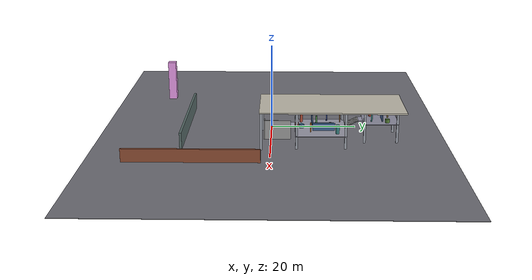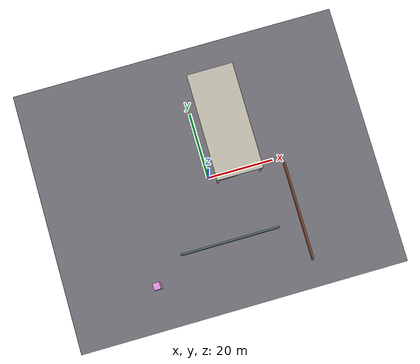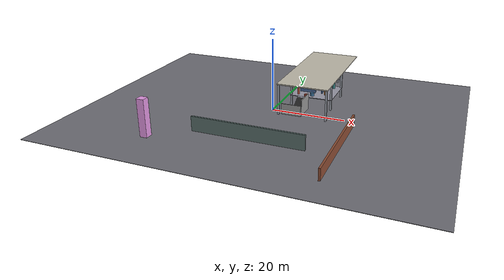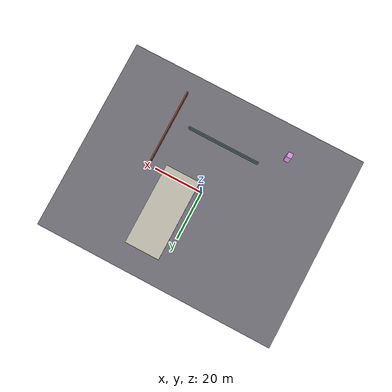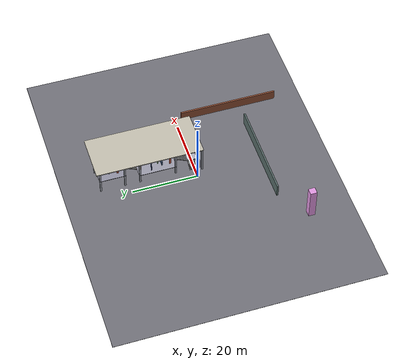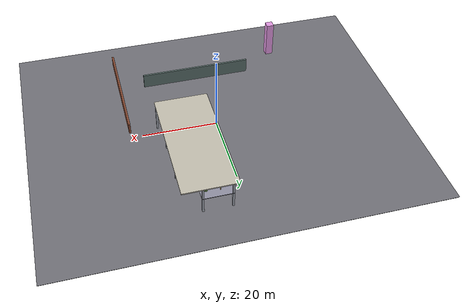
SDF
<sdf version="1.5">
 <world name="complex_terrain_v6">
  <model name="custom_ground">
   <static>true</static>
   <link name="ground_link">
    <visual name="ground_v">
     <pose>0 0 -0.05 0 0 0</pose>
     <geometry><box><size>100 80 0.10</size></box></geometry>
     <material>
      <ambient>0.45 0.45 0.48 1</ambient>
      <diffuse>0.45 0.45 0.48 1</diffuse>
      <specular>0.02 0.02 0.02 1</specular>
     </material>
    </visual>
    <collision name="ground_c">
     <pose>0 0 -0.05 0 0 0</pose>
     <geometry><box><size>100 80 0.10</size></box></geometry>
     <surface>
      <friction><ode><mu>1.0</mu><mu2>1.0</mu2></ode></friction>
      <contact><ode><kp>1e6</kp><kd>100</kd></ode></contact>
     </surface>
    </collision>
   </link>
  </model>
  <model name="staircase_complex">
   <static>true</static>
   <link name="stairs_link">
    <visual name="sA0_v">
     <pose>3.15 0 0.075 0 0 0</pose>
     <geometry><box><size>0.30 3.0 0.15</size></box></geometry>
     <material>
      <script><uri>file://media/materials/scripts/gazebo.material</uri><name>Gazebo/Grey</name></script>
      <ambient>0.85 0.85 0.85 1</ambient>
     </material>
    </visual>
    <collision name="sA0_c">
     <pose>3.15 0 0.075 0 0 0</pose>
     <geometry><box><size>0.30 3.0 0.15</size></box></geometry>
    </collision>
    <visual name="sA1_v">
     <pose>3.45 0 0.225 0 0 0</pose>
     <geometry><box><size>0.30 3.0 0.15</size></box></geometry>
     <material>
      <script><uri>file://media/materials/scripts/gazebo.material</uri><name>Gazebo/Grey</name></script>
      <ambient>0.85 0.85 0.85 1</ambient>
     </material>
    </visual>
    <collision name="sA1_c">
     <pose>3.45 0 0.225 0 0 0</pose>
     <geometry><box><size>0.30 3.0 0.15</size></box></geometry>
    </collision>
    <visual name="sA2_v">
     <pose>3.75 0 0.375 0 0 0</pose>
     <geometry><box><size>0.30 3.0 0.15</size></box></geometry>
     <material>
      <script><uri>file://media/materials/scripts/gazebo.material</uri><name>Gazebo/Grey</name></script>
      <ambient>0.85 0.85 0.85 1</ambient>
     </material>
    </visual>
    <collision name="sA2_c">
     <pose>3.75 0 0.375 0 0 0</pose>
     <geometry><box><size>0.30 3.0 0.15</size></box></geometry>
    </collision>
    <visual name="sA3_v">
     <pose>4.05 0 0.525 0 0 0</pose>
     <geometry><box><size>0.30 3.0 0.15</size></box></geometry>
     <material>
      <script><uri>file://media/materials/scripts/gazebo.material</uri><name>Gazebo/Grey</name></script>
      <ambient>0.85 0.85 0.85 1</ambient>
     </material>
    </visual>
    <collision name="sA3_c">
     <pose>4.05 0 0.525 0 0 0</pose>
     <geometry><box><size>0.30 3.0 0.15</size></box></geometry>
    </collision>
    <visual name="sA4_v">
     <pose>4.35 0 0.675 0 0 0</pose>
     <geometry><box><size>0.30 3.0 0.15</size></box></geometry>
     <material>
      <script><uri>file://media/materials/scripts/gazebo.material</uri><name>Gazebo/Grey</name></script>
      <ambient>0.85 0.85 0.85 1</ambient>
     </material>
    </visual>
    <collision name="sA4_c">
     <pose>4.35 0 0.675 0 0 0</pose>
     <geometry><box><size>0.30 3.0 0.15</size></box></geometry>
    </collision>
    <visual name="sA5_v">
     <pose>4.65 0 0.825 0 0 0</pose>
     <geometry><box><size>0.30 3.0 0.15</size></box></geometry>
     <material>
      <script><uri>file://media/materials/scripts/gazebo.material</uri><name>Gazebo/Grey</name></script>
      <ambient>0.85 0.85 0.85 1</ambient>
     </material>
    </visual>
    <collision name="sA5_c">
     <pose>4.65 0 0.825 0 0 0</pose>
     <geometry><box><size>0.30 3.0 0.15</size></box></geometry>
    </collision>
    <visual name="sA6_v">
     <pose>4.95 0 0.975 0 0 0</pose>
     <geometry><box><size>0.30 3.0 0.15</size></box></geometry>
     <material>
      <script><uri>file://media/materials/scripts/gazebo.material</uri><name>Gazebo/Grey</name></script>
      <ambient>0.85 0.85 0.85 1</ambient>
     </material>
    </visual>
    <collision name="sA6_c">
     <pose>4.95 0 0.975 0 0 0</pose>
     <geometry><box><size>0.30 3.0 0.15</size></box></geometry>
    </collision>
    <visual name="sA7_v">
     <pose>5.25 0 1.125 0 0 0</pose>
     <geometry><box><size>0.30 3.0 0.15</size></box></geometry>
     <material>
      <script><uri>file://media/materials/scripts/gazebo.material</uri><name>Gazebo/Grey</name></script>
      <ambient>0.85 0.85 0.85 1</ambient>
     </material>
    </visual>
    <collision name="sA7_c">
     <pose>5.25 0 1.125 0 0 0</pose>
     <geometry><box><size>0.30 3.0 0.15</size></box></geometry>
    </collision>
    <visual name="sA8_v">
     <pose>5.55 0 1.275 0 0 0</pose>
     <geometry><box><size>0.30 3.0 0.15</size></box></geometry>
     <material>
      <script><uri>file://media/materials/scripts/gazebo.material</uri><name>Gazebo/Grey</name></script>
      <ambient>0.85 0.85 0.85 1</ambient>
     </material>
    </visual>
    <collision name="sA8_c">
     <pose>5.55 0 1.275 0 0 0</pose>
     <geometry><box><size>0.30 3.0 0.15</size></box></geometry>
    </collision>
    <visual name="sA9_v">
     <pose>5.85 0 1.425 0 0 0</pose>
     <geometry><box><size>0.30 3.0 0.15</size></box></geometry>
     <material>
      <script><uri>file://media/materials/scripts/gazebo.material</uri><name>Gazebo/Grey</name></script>
      <ambient>0.85 0.85 0.85 1</ambient>
     </material>
    </visual>
    <collision name="sA9_c">
     <pose>5.85 0 1.425 0 0 0</pose>
     <geometry><box><size>0.30 3.0 0.15</size></box></geometry>
    </collision>
    <visual name="land1_v">
     <pose>7.0 0 1.425 0 0 0</pose>
     <geometry><box><size>3.0 3.0 0.15</size></box></geometry>
     <material>
      <script><uri>file://media/materials/scripts/gazebo.material</uri><name>Gazebo/Grey</name></script>
      <ambient>0.70 0.70 0.75 1</ambient>
     </material>
    </visual>
    <collision name="land1_c">
     <pose>7.0 0 1.425 0 0 0</pose>
     <geometry><box><size>3.0 3.0 0.15</size></box></geometry>
    </collision>
    <visual name="sB0_v">
     <pose>7.0 1.65 1.575 0 0 0</pose>
     <geometry><box><size>3.0 0.30 0.15</size></box></geometry>
     <material>
      <script><uri>file://media/materials/scripts/gazebo.material</uri><name>Gazebo/Grey</name></script>
      <ambient>0.85 0.85 0.85 1</ambient>
     </material>
    </visual>
    <collision name="sB0_c">
     <pose>7.0 1.65 1.575 0 0 0</pose>
     <geometry><box><size>3.0 0.30 0.15</size></box></geometry>
    </collision>
    <visual name="sB1_v">
     <pose>7.0 1.95 1.725 0 0 0</pose>
     <geometry><box><size>3.0 0.30 0.15</size></box></geometry>
     <material>
      <script><uri>file://media/materials/scripts/gazebo.material</uri><name>Gazebo/Grey</name></script>
      <ambient>0.85 0.85 0.85 1</ambient>
     </material>
    </visual>
    <collision name="sB1_c">
     <pose>7.0 1.95 1.725 0 0 0</pose>
     <geometry><box><size>3.0 0.30 0.15</size></box></geometry>
    </collision>
    <visual name="sB2_v">
     <pose>7.0 2.25 1.875 0 0 0</pose>
     <geometry><box><size>3.0 0.30 0.15</size></box></geometry>
     <material>
      <script><uri>file://media/materials/scripts/gazebo.material</uri><name>Gazebo/Grey</name></script>
      <ambient>0.85 0.85 0.85 1</ambient>
     </material>
    </visual>
    <collision name="sB2_c">
     <pose>7.0 2.25 1.875 0 0 0</pose>
     <geometry><box><size>3.0 0.30 0.15</size></box></geometry>
    </collision>
    <visual name="sB3_v">
     <pose>7.0 2.55 2.025 0 0 0</pose>
     <geometry><box><size>3.0 0.30 0.15</size></box></geometry>
     <material>
      <script><uri>file://media/materials/scripts/gazebo.material</uri><name>Gazebo/Grey</name></script>
      <ambient>0.85 0.85 0.85 1</ambient>
     </material>
    </visual>
    <collision name="sB3_c">
     <pose>7.0 2.55 2.025 0 0 0</pose>
     <geometry><box><size>3.0 0.30 0.15</size></box></geometry>
    </collision>
    <visual name="sB4_v">
     <pose>7.0 2.85 2.175 0 0 0</pose>
     <geometry><box><size>3.0 0.30 0.15</size></box></geometry>
     <material>
      <script><uri>file://media/materials/scripts/gazebo.material</uri><name>Gazebo/Grey</name></script>
      <ambient>0.85 0.85 0.85 1</ambient>
     </material>
    </visual>
    <collision name="sB4_c">
     <pose>7.0 2.85 2.175 0 0 0</pose>
     <geometry><box><size>3.0 0.30 0.15</size></box></geometry>
    </collision>
    <visual name="sB5_v">
     <pose>7.0 3.15 2.325 0 0 0</pose>
     <geometry><box><size>3.0 0.30 0.15</size></box></geometry>
     <material>
      <script><uri>file://media/materials/scripts/gazebo.material</uri><name>Gazebo/Grey</name></script>
      <ambient>0.85 0.85 0.85 1</ambient>
     </material>
    </visual>
    <collision name="sB5_c">
     <pose>7.0 3.15 2.325 0 0 0</pose>
     <geometry><box><size>3.0 0.30 0.15</size></box></geometry>
    </collision>
    <visual name="sB6_v">
     <pose>7.0 3.45 2.475 0 0 0</pose>
     <geometry><box><size>3.0 0.30 0.15</size></box></geometry>
     <material>
      <script><uri>file://media/materials/scripts/gazebo.material</uri><name>Gazebo/Grey</name></script>
      <ambient>0.85 0.85 0.85 1</ambient>
     </material>
    </visual>
    <collision name="sB6_c">
     <pose>7.0 3.45 2.475 0 0 0</pose>
     <geometry><box><size>3.0 0.30 0.15</size></box></geometry>
    </collision>
    <visual name="sB7_v">
     <pose>7.0 3.75 2.625 0 0 0</pose>
     <geometry><box><size>3.0 0.30 0.15</size></box></geometry>
     <material>
      <script><uri>file://media/materials/scripts/gazebo.material</uri><name>Gazebo/Grey</name></script>
      <ambient>0.85 0.85 0.85 1</ambient>
     </material>
    </visual>
    <collision name="sB7_c">
     <pose>7.0 3.75 2.625 0 0 0</pose>
     <geometry><box><size>3.0 0.30 0.15</size></box></geometry>
    </collision>
    <visual name="sB8_v">
     <pose>7.0 4.05 2.775 0 0 0</pose>
     <geometry><box><size>3.0 0.30 0.15</size></box></geometry>
     <material>
      <script><uri>file://media/materials/scripts/gazebo.material</uri><name>Gazebo/Grey</name></script>
      <ambient>0.85 0.85 0.85 1</ambient>
     </material>
    </visual>
    <collision name="sB8_c">
     <pose>7.0 4.05 2.775 0 0 0</pose>
     <geometry><box><size>3.0 0.30 0.15</size></box></geometry>
    </collision>
    <visual name="sB9_v">
     <pose>7.0 4.35 2.925 0 0 0</pose>
     <geometry><box><size>3.0 0.30 0.15</size></box></geometry>
     <material>
      <script><uri>file://media/materials/scripts/gazebo.material</uri><name>Gazebo/Grey</name></script>
      <ambient>0.85 0.85 0.85 1</ambient>
     </material>
    </visual>
    <collision name="sB9_c">
     <pose>7.0 4.35 2.925 0 0 0</pose>
     <geometry><box><size>3.0 0.30 0.15</size></box></geometry>
    </collision>
    <visual name="land2_v">
     <pose>7.0 5.0 2.925 0 0 0</pose>
     <geometry><box><size>3.0 1.0 0.15</size></box></geometry>
     <material>
      <script><uri>file://media/materials/scripts/gazebo.material</uri><name>Gazebo/Grey</name></script>
      <ambient>0.65 0.65 0.72 1</ambient>
     </material>
    </visual>
    <collision name="land2_c">
     <pose>7.0 5.0 2.925 0 0 0</pose>
     <geometry><box><size>3.0 1.0 0.15</size></box></geometry>
    </collision>
    <visual name="sC0_v">
     <pose>7.0 17.15 3.075 0 0 0</pose>
     <geometry><box><size>3.0 0.30 0.15</size></box></geometry>
     <material>
      <script><uri>file://media/materials/scripts/gazebo.material</uri><name>Gazebo/Grey</name></script>
      <ambient>0.83 0.83 0.83 1</ambient>
     </material>
    </visual>
    <collision name="sC0_c">
     <pose>7.0 17.15 3.075 0 0 0</pose>
     <geometry><box><size>3.0 0.30 0.15</size></box></geometry>
    </collision>
    <visual name="sC1_v">
     <pose>7.0 17.45 3.225 0 0 0</pose>
     <geometry><box><size>3.0 0.30 0.15</size></box></geometry>
     <material>
      <script><uri>file://media/materials/scripts/gazebo.material</uri><name>Gazebo/Grey</name></script>
      <ambient>0.83 0.83 0.83 1</ambient>
     </material>
    </visual>
    <collision name="sC1_c">
     <pose>7.0 17.45 3.225 0 0 0</pose>
     <geometry><box><size>3.0 0.30 0.15</size></box></geometry>
    </collision>
    <visual name="sC2_v">
     <pose>7.0 17.75 3.375 0 0 0</pose>
     <geometry><box><size>3.0 0.30 0.15</size></box></geometry>
     <material>
      <script><uri>file://media/materials/scripts/gazebo.material</uri><name>Gazebo/Grey</name></script>
      <ambient>0.83 0.83 0.83 1</ambient>
     </material>
    </visual>
    <collision name="sC2_c">
     <pose>7.0 17.75 3.375 0 0 0</pose>
     <geometry><box><size>3.0 0.30 0.15</size></box></geometry>
    </collision>
    <visual name="sC3_v">
     <pose>7.0 18.05 3.525 0 0 0</pose>
     <geometry><box><size>3.0 0.30 0.15</size></box></geometry>
     <material>
      <script><uri>file://media/materials/scripts/gazebo.material</uri><name>Gazebo/Grey</name></script>
      <ambient>0.83 0.83 0.83 1</ambient>
     </material>
    </visual>
    <collision name="sC3_c">
     <pose>7.0 18.05 3.525 0 0 0</pose>
     <geometry><box><size>3.0 0.30 0.15</size></box></geometry>
    </collision>
    <visual name="sC4_v">
     <pose>7.0 18.35 3.675 0 0 0</pose>
     <geometry><box><size>3.0 0.30 0.15</size></box></geometry>
     <material>
      <script><uri>file://media/materials/scripts/gazebo.material</uri><name>Gazebo/Grey</name></script>
      <ambient>0.83 0.83 0.83 1</ambient>
     </material>
    </visual>
    <collision name="sC4_c">
     <pose>7.0 18.35 3.675 0 0 0</pose>
     <geometry><box><size>3.0 0.30 0.15</size></box></geometry>
    </collision>
    <visual name="sC5_v">
     <pose>7.0 18.65 3.825 0 0 0</pose>
     <geometry><box><size>3.0 0.30 0.15</size></box></geometry>
     <material>
      <script><uri>file://media/materials/scripts/gazebo.material</uri><name>Gazebo/Grey</name></script>
      <ambient>0.83 0.83 0.83 1</ambient>
     </material>
    </visual>
    <collision name="sC5_c">
     <pose>7.0 18.65 3.825 0 0 0</pose>
     <geometry><box><size>3.0 0.30 0.15</size></box></geometry>
    </collision>
    <visual name="sC6_v">
     <pose>7.0 18.95 3.975 0 0 0</pose>
     <geometry><box><size>3.0 0.30 0.15</size></box></geometry>
     <material>
      <script><uri>file://media/materials/scripts/gazebo.material</uri><name>Gazebo/Grey</name></script>
      <ambient>0.83 0.83 0.83 1</ambient>
     </material>
    </visual>
    <collision name="sC6_c">
     <pose>7.0 18.95 3.975 0 0 0</pose>
     <geometry><box><size>3.0 0.30 0.15</size></box></geometry>
    </collision>
    <visual name="sC7_v">
     <pose>7.0 19.25 4.125 0 0 0</pose>
     <geometry><box><size>3.0 0.30 0.15</size></box></geometry>
     <material>
      <script><uri>file://media/materials/scripts/gazebo.material</uri><name>Gazebo/Grey</name></script>
      <ambient>0.83 0.83 0.83 1</ambient>
     </material>
    </visual>
    <collision name="sC7_c">
     <pose>7.0 19.25 4.125 0 0 0</pose>
     <geometry><box><size>3.0 0.30 0.15</size></box></geometry>
    </collision>
    <visual name="sC8_v">
     <pose>7.0 19.55 4.275 0 0 0</pose>
     <geometry><box><size>3.0 0.30 0.15</size></box></geometry>
     <material>
      <script><uri>file://media/materials/scripts/gazebo.material</uri><name>Gazebo/Grey</name></script>
      <ambient>0.83 0.83 0.83 1</ambient>
     </material>
    </visual>
    <collision name="sC8_c">
     <pose>7.0 19.55 4.275 0 0 0</pose>
     <geometry><box><size>3.0 0.30 0.15</size></box></geometry>
    </collision>
    <visual name="sC9_v">
     <pose>7.0 19.85 4.425 0 0 0</pose>
     <geometry><box><size>3.0 0.30 0.15</size></box></geometry>
     <material>
      <script><uri>file://media/materials/scripts/gazebo.material</uri><name>Gazebo/Grey</name></script>
      <ambient>0.83 0.83 0.83 1</ambient>
     </material>
    </visual>
    <collision name="sC9_c">
     <pose>7.0 19.85 4.425 0 0 0</pose>
     <geometry><box><size>3.0 0.30 0.15</size></box></geometry>
    </collision>
    <visual name="land3_v">
     <pose>7.0 20.5 4.425 0 0 0</pose>
     <geometry><box><size>3.0 1.0 0.15</size></box></geometry>
     <material>
      <script><uri>file://media/materials/scripts/gazebo.material</uri><name>Gazebo/Grey</name></script>
      <ambient>0.62 0.62 0.70 1</ambient>
     </material>
    </visual>
    <collision name="land3_c">
     <pose>7.0 20.5 4.425 0 0 0</pose>
     <geometry><box><size>3.0 1.0 0.15</size></box></geometry>
    </collision>
   </link>
  </model>
  <model name="staircase_walls">
   <static>true</static>
   <link name="walls_link">
    <visual name="sw_south_v">
     <pose>5.75 -1.60 1.50 0 0 0</pose>
     <geometry><box><size>5.5 0.20 3.00</size></box></geometry>
     <material>
      <script><uri>file://media/materials/scripts/gazebo.material</uri><name>Gazebo/Grey</name></script>
      <ambient>0.55 0.55 0.60 1</ambient>
     </material>
    </visual>
    <collision name="sw_south_c">
     <pose>5.75 -1.60 1.50 0 0 0</pose>
     <geometry><box><size>5.5 0.20 3.00</size></box></geometry>
    </collision>
    <visual name="sw_east_v">
     <pose>8.60 1.50 2.25 0 0 0</pose>
     <geometry><box><size>0.20 6.00 4.50</size></box></geometry>
     <material>
      <script><uri>file://media/materials/scripts/gazebo.material</uri><name>Gazebo/Grey</name></script>
      <ambient>0.55 0.55 0.60 1</ambient>
     </material>
    </visual>
    <collision name="sw_east_c">
     <pose>8.60 1.50 2.25 0 0 0</pose>
     <geometry><box><size>0.20 6.00 4.50</size></box></geometry>
    </collision>
    <visual name="sw_corner_v">
     <pose>8.60 -1.60 2.25 0 0 0</pose>
     <geometry><box><size>0.20 0.20 4.50</size></box></geometry>
     <material>
      <script><uri>file://media/materials/scripts/gazebo.material</uri><name>Gazebo/Grey</name></script>
      <ambient>0.55 0.55 0.60 1</ambient>
     </material>
    </visual>
    <collision name="sw_corner_c">
     <pose>8.60 -1.60 2.25 0 0 0</pose>
     <geometry><box><size>0.20 0.20 4.50</size></box></geometry>
    </collision>
   </link>
  </model>
  <model name="top_platform_2f">
   <static>true</static>
   <link name="top_link">
    <visual name="tp_floor_v">
     <pose>9.0 11.25 2.925 0 0 0</pose>
     <geometry><box><size>12.0 11.5 0.15</size></box></geometry>
     <material>
      <script><uri>file://media/materials/scripts/gazebo.material</uri><name>Gazebo/Grey</name></script>
      <ambient>0.62 0.62 0.68 1</ambient>
     </material>
    </visual>
    <collision name="tp_floor_c">
     <pose>9.0 11.25 2.925 0 0 0</pose>
     <geometry><box><size>12.0 11.5 0.15</size></box></geometry>
    </collision>
    <visual name="lm1_v">
     <pose>5.0 7.0 4.25 0 0 0</pose>
     <geometry><cylinder><radius>0.30</radius><length>2.50</length></cylinder></geometry>
     <material>
      <script><uri>file://media/materials/scripts/gazebo.material</uri><name>Gazebo/Grey</name></script>
      <ambient>0.65 0.28 0.20 1</ambient>
     </material>
    </visual>
    <collision name="lm1_c">
     <pose>5.0 7.0 4.25 0 0 0</pose>
     <geometry><cylinder><radius>0.30</radius><length>2.50</length></cylinder></geometry>
    </collision>
    <visual name="lm2_v">
     <pose>9.0 7.0 3.40 0 0 0</pose>
     <geometry><cylinder><radius>0.55</radius><length>0.80</length></cylinder></geometry>
     <material>
      <script><uri>file://media/materials/scripts/gazebo.material</uri><name>Gazebo/Grey</name></script>
      <ambient>0.22 0.42 0.58 1</ambient>
     </material>
    </visual>
    <collision name="lm2_c">
     <pose>9.0 7.0 3.40 0 0 0</pose>
     <geometry><cylinder><radius>0.55</radius><length>0.80</length></cylinder></geometry>
    </collision>
    <visual name="lm3_v">
     <pose>6.0 10.5 3.90 0 0 0</pose>
     <geometry><cylinder><radius>0.20</radius><length>1.80</length></cylinder></geometry>
     <material>
      <script><uri>file://media/materials/scripts/gazebo.material</uri><name>Gazebo/Grey</name></script>
      <ambient>0.26 0.52 0.26 1</ambient>
     </material>
    </visual>
    <collision name="lm3_c">
     <pose>6.0 10.5 3.90 0 0 0</pose>
     <geometry><cylinder><radius>0.20</radius><length>1.80</length></cylinder></geometry>
    </collision>
    <visual name="lm4_v">
     <pose>4.0 13.0 4.40 0 0 0</pose>
     <geometry><cylinder><radius>0.15</radius><length>2.80</length></cylinder></geometry>
     <material>
      <script><uri>file://media/materials/scripts/gazebo.material</uri><name>Gazebo/Grey</name></script>
      <ambient>0.20 0.28 0.55 1</ambient>
     </material>
    </visual>
    <collision name="lm4_c">
     <pose>4.0 13.0 4.40 0 0 0</pose>
     <geometry><cylinder><radius>0.15</radius><length>2.80</length></cylinder></geometry>
    </collision>
    <visual name="lm5_v">
     <pose>12.0 9.0 4.10 0 0 0</pose>
     <geometry><box><size>0.30 0.30 2.20</size></box></geometry>
     <material>
      <script><uri>file://media/materials/scripts/gazebo.material</uri><name>Gazebo/Grey</name></script>
      <ambient>0.65 0.38 0.12 1</ambient>
     </material>
    </visual>
    <collision name="lm5_c">
     <pose>12.0 9.0 4.10 0 0 0</pose>
     <geometry><box><size>0.30 0.30 2.20</size></box></geometry>
    </collision>
    <visual name="lm6_v">
     <pose>10.0 13.5 3.80 0 0 0</pose>
     <geometry><box><size>0.40 0.40 1.60</size></box></geometry>
     <material>
      <script><uri>file://media/materials/scripts/gazebo.material</uri><name>Gazebo/Grey</name></script>
      <ambient>0.35 0.45 0.20 1</ambient>
     </material>
    </visual>
    <collision name="lm6_c">
     <pose>10.0 13.5 3.80 0 0 0</pose>
     <geometry><box><size>0.40 0.40 1.60</size></box></geometry>
    </collision>
    <visual name="lm7_v">
     <pose>7.0 9.5 3.75 0 0 0</pose>
     <geometry><box><size>4.50 0.25 1.50</size></box></geometry>
     <material>
      <script><uri>file://media/materials/scripts/gazebo.material</uri><name>Gazebo/Grey</name></script>
      <ambient>0.28 0.40 0.58 1</ambient>
     </material>
    </visual>
    <collision name="lm7_c">
     <pose>7.0 9.5 3.75 0 0 0</pose>
     <geometry><box><size>4.50 0.25 1.50</size></box></geometry>
    </collision>
    <visual name="lm8_v">
     <pose>7.5 6.0 3.30 0 0 0</pose>
     <geometry><box><size>0.80 0.80 0.60</size></box></geometry>
     <material>
      <script><uri>file://media/materials/scripts/gazebo.material</uri><name>Gazebo/Grey</name></script>
      <ambient>0.60 0.24 0.18 1</ambient>
     </material>
    </visual>
    <collision name="lm8_c">
     <pose>7.5 6.0 3.30 0 0 0</pose>
     <geometry><box><size>0.80 0.80 0.60</size></box></geometry>
    </collision>
    <visual name="lm9_v">
     <pose>13.0 15.0 4.00 0 0 0</pose>
     <geometry><cylinder><radius>0.40</radius><length>2.00</length></cylinder></geometry>
     <material>
      <script><uri>file://media/materials/scripts/gazebo.material</uri><name>Gazebo/Grey</name></script>
      <ambient>0.20 0.48 0.48 1</ambient>
     </material>
    </visual>
    <collision name="lm9_c">
     <pose>13.0 15.0 4.00 0 0 0</pose>
     <geometry><cylinder><radius>0.40</radius><length>2.00</length></cylinder></geometry>
    </collision>
    <visual name="lm10_v">
     <pose>5.0 16.0 4.20 0 0 0</pose>
     <geometry><box><size>0.25 0.25 2.40</size></box></geometry>
     <material>
      <script><uri>file://media/materials/scripts/gazebo.material</uri><name>Gazebo/Grey</name></script>
      <ambient>0.48 0.32 0.16 1</ambient>
     </material>
    </visual>
    <collision name="lm10_c">
     <pose>5.0 16.0 4.20 0 0 0</pose>
     <geometry><box><size>0.25 0.25 2.40</size></box></geometry>
    </collision>
    <visual name="lm11_v">
     <pose>11.0 12.0 3.90 0 0 0</pose>
     <geometry><box><size>0.25 5.0 1.80</size></box></geometry>
     <material>
      <script><uri>file://media/materials/scripts/gazebo.material</uri><name>Gazebo/Grey</name></script>
      <ambient>0.24 0.38 0.56 1</ambient>
     </material>
    </visual>
    <collision name="lm11_c">
     <pose>11.0 12.0 3.90 0 0 0</pose>
     <geometry><box><size>0.25 5.0 1.80</size></box></geometry>
    </collision>
   </link>
  </model>
  <model name="top_platform_3f">
   <static>true</static>
   <link name="top3_link">
    <visual name="tp3_floor_v">
     <pose>7.0 25.0 4.425 0 0 0</pose>
     <geometry><box><size>8.0 8.0 0.15</size></box></geometry>
     <material>
      <script><uri>file://media/materials/scripts/gazebo.material</uri><name>Gazebo/Grey</name></script>
      <ambient>0.58 0.58 0.65 1</ambient>
     </material>
    </visual>
    <collision name="tp3_floor_c">
     <pose>7.0 25.0 4.425 0 0 0</pose>
     <geometry><box><size>8.0 8.0 0.15</size></box></geometry>
    </collision>
    <visual name="l3m1_v">
     <pose>5.0 23.0 5.60 0 0 0</pose>
     <geometry><cylinder><radius>0.35</radius><length>2.20</length></cylinder></geometry>
     <material>
      <script><uri>file://media/materials/scripts/gazebo.material</uri><name>Gazebo/Grey</name></script>
      <ambient>0.65 0.26 0.18 1</ambient>
     </material>
    </visual>
    <collision name="l3m1_c">
     <pose>5.0 23.0 5.60 0 0 0</pose>
     <geometry><cylinder><radius>0.35</radius><length>2.20</length></cylinder></geometry>
    </collision>
    <visual name="l3m2_v">
     <pose>9.0 23.0 5.50 0 0 0</pose>
     <geometry><box><size>0.30 0.30 2.00</size></box></geometry>
     <material>
      <script><uri>file://media/materials/scripts/gazebo.material</uri><name>Gazebo/Grey</name></script>
      <ambient>0.22 0.48 0.48 1</ambient>
     </material>
    </visual>
    <collision name="l3m2_c">
     <pose>9.0 23.0 5.50 0 0 0</pose>
     <geometry><box><size>0.30 0.30 2.00</size></box></geometry>
    </collision>
    <visual name="l3m3_v">
     <pose>6.0 27.0 5.75 0 0 0</pose>
     <geometry><cylinder><radius>0.15</radius><length>2.60</length></cylinder></geometry>
     <material>
      <script><uri>file://media/materials/scripts/gazebo.material</uri><name>Gazebo/Grey</name></script>
      <ambient>0.60 0.50 0.28 1</ambient>
     </material>
    </visual>
    <collision name="l3m3_c">
     <pose>6.0 27.0 5.75 0 0 0</pose>
     <geometry><cylinder><radius>0.15</radius><length>2.60</length></cylinder></geometry>
    </collision>
    <visual name="l3m4_v">
     <pose>7.0 25.5 5.25 0 0 0</pose>
     <geometry><box><size>4.0 0.25 1.50</size></box></geometry>
     <material>
      <script><uri>file://media/materials/scripts/gazebo.material</uri><name>Gazebo/Grey</name></script>
      <ambient>0.26 0.36 0.54 1</ambient>
     </material>
    </visual>
    <collision name="l3m4_c">
     <pose>7.0 25.5 5.25 0 0 0</pose>
     <geometry><box><size>4.0 0.25 1.50</size></box></geometry>
    </collision>
    <visual name="l3m5_v">
     <pose>9.5 26.5 4.90 0 0 0</pose>
     <geometry><cylinder><radius>0.50</radius><length>0.80</length></cylinder></geometry>
     <material>
      <script><uri>file://media/materials/scripts/gazebo.material</uri><name>Gazebo/Grey</name></script>
      <ambient>0.32 0.48 0.20 1</ambient>
     </material>
    </visual>
    <collision name="l3m5_c">
     <pose>9.5 26.5 4.90 0 0 0</pose>
     <geometry><cylinder><radius>0.50</radius><length>0.80</length></cylinder></geometry>
    </collision>
   </link>
  </model>
  <model name="staircase_roof">
   <static>true</static>
   <link name="roof_link">
    <visual name="ceiling_v">
     <pose>9 13.75 8.65 0 0 0</pose>
     <geometry><box><size>14 32.5 0.30</size></box></geometry>
     <material>
      <ambient>0.78 0.76 0.70 1</ambient>
      <diffuse>0.78 0.76 0.70 1</diffuse>
      <specular>0.03 0.03 0.03 1</specular>
     </material>
    </visual>
    <collision name="ceiling_c">
     <pose>9 13.75 8.65 0 0 0</pose>
     <geometry><box><size>14 32.5 0.30</size></box></geometry>
    </collision>
    <visual name="platform_2f_west_south_column_v">
     <pose>3.3 5.8 4.25 0 0 0</pose>
     <geometry><box><size>0.50 0.50 8.50</size></box></geometry>
     <material>
      <ambient>0.62 0.64 0.68 1</ambient>
      <diffuse>0.62 0.64 0.68 1</diffuse>
      <specular>0.03 0.03 0.03 1</specular>
     </material>
    </visual>
    <collision name="platform_2f_west_south_column_c">
     <pose>3.3 5.8 4.25 0 0 0</pose>
     <geometry><box><size>0.50 0.50 8.50</size></box></geometry>
    </collision>
    <visual name="platform_2f_west_north_column_v">
     <pose>3.3 16.7 4.25 0 0 0</pose>
     <geometry><box><size>0.50 0.50 8.50</size></box></geometry>
     <material>
      <ambient>0.62 0.64 0.68 1</ambient>
      <diffuse>0.62 0.64 0.68 1</diffuse>
      <specular>0.03 0.03 0.03 1</specular>
     </material>
    </visual>
    <collision name="platform_2f_west_north_column_c">
     <pose>3.3 16.7 4.25 0 0 0</pose>
     <geometry><box><size>0.50 0.50 8.50</size></box></geometry>
    </collision>
    <visual name="platform_2f_east_south_column_v">
     <pose>14.7 5.8 4.25 0 0 0</pose>
     <geometry><box><size>0.50 0.50 8.50</size></box></geometry>
     <material>
      <ambient>0.62 0.64 0.68 1</ambient>
      <diffuse>0.62 0.64 0.68 1</diffuse>
      <specular>0.03 0.03 0.03 1</specular>
     </material>
    </visual>
    <collision name="platform_2f_east_south_column_c">
     <pose>14.7 5.8 4.25 0 0 0</pose>
     <geometry><box><size>0.50 0.50 8.50</size></box></geometry>
    </collision>
    <visual name="platform_2f_east_north_column_v">
     <pose>14.7 16.7 4.25 0 0 0</pose>
     <geometry><box><size>0.50 0.50 8.50</size></box></geometry>
     <material>
      <ambient>0.62 0.64 0.68 1</ambient>
      <diffuse>0.62 0.64 0.68 1</diffuse>
      <specular>0.03 0.03 0.03 1</specular>
     </material>
    </visual>
    <collision name="platform_2f_east_north_column_c">
     <pose>14.7 16.7 4.25 0 0 0</pose>
     <geometry><box><size>0.50 0.50 8.50</size></box></geometry>
    </collision>
    <visual name="platform_3f_west_south_column_v">
     <pose>3.3 21.3 4.25 0 0 0</pose>
     <geometry><box><size>0.50 0.50 8.50</size></box></geometry>
     <material>
      <ambient>0.62 0.64 0.68 1</ambient>
      <diffuse>0.62 0.64 0.68 1</diffuse>
      <specular>0.03 0.03 0.03 1</specular>
     </material>
    </visual>
    <collision name="platform_3f_west_south_column_c">
     <pose>3.3 21.3 4.25 0 0 0</pose>
     <geometry><box><size>0.50 0.50 8.50</size></box></geometry>
    </collision>
    <visual name="platform_3f_west_north_column_v">
     <pose>3.3 28.7 4.25 0 0 0</pose>
     <geometry><box><size>0.50 0.50 8.50</size></box></geometry>
     <material>
      <ambient>0.62 0.64 0.68 1</ambient>
      <diffuse>0.62 0.64 0.68 1</diffuse>
      <specular>0.03 0.03 0.03 1</specular>
     </material>
    </visual>
    <collision name="platform_3f_west_north_column_c">
     <pose>3.3 28.7 4.25 0 0 0</pose>
     <geometry><box><size>0.50 0.50 8.50</size></box></geometry>
    </collision>
    <visual name="platform_3f_east_south_column_v">
     <pose>10.7 21.3 4.25 0 0 0</pose>
     <geometry><box><size>0.50 0.50 8.50</size></box></geometry>
     <material>
      <ambient>0.62 0.64 0.68 1</ambient>
      <diffuse>0.62 0.64 0.68 1</diffuse>
      <specular>0.03 0.03 0.03 1</specular>
     </material>
    </visual>
    <collision name="platform_3f_east_south_column_c">
     <pose>10.7 21.3 4.25 0 0 0</pose>
     <geometry><box><size>0.50 0.50 8.50</size></box></geometry>
    </collision>
    <visual name="platform_3f_east_north_column_v">
     <pose>10.7 28.7 4.25 0 0 0</pose>
     <geometry><box><size>0.50 0.50 8.50</size></box></geometry>
     <material>
      <ambient>0.62 0.64 0.68 1</ambient>
      <diffuse>0.62 0.64 0.68 1</diffuse>
      <specular>0.03 0.03 0.03 1</specular>
     </material>
    </visual>
    <collision name="platform_3f_east_north_column_c">
     <pose>10.7 28.7 4.25 0 0 0</pose>
     <geometry><box><size>0.50 0.50 8.50</size></box></geometry>
    </collision>
    <visual name="entrance_west_column_v">
     <pose>2.4 -2.1 4.25 0 0 0</pose>
     <geometry><box><size>0.50 0.50 8.50</size></box></geometry>
     <material>
      <ambient>0.62 0.64 0.68 1</ambient>
      <diffuse>0.62 0.64 0.68 1</diffuse>
      <specular>0.03 0.03 0.03 1</specular>
     </material>
    </visual>
    <collision name="entrance_west_column_c">
     <pose>2.4 -2.1 4.25 0 0 0</pose>
     <geometry><box><size>0.50 0.50 8.50</size></box></geometry>
    </collision>
    <visual name="entrance_east_column_v">
     <pose>15.6 -2.1 4.25 0 0 0</pose>
     <geometry><box><size>0.50 0.50 8.50</size></box></geometry>
     <material>
      <ambient>0.62 0.64 0.68 1</ambient>
      <diffuse>0.62 0.64 0.68 1</diffuse>
      <specular>0.03 0.03 0.03 1</specular>
     </material>
    </visual>
    <collision name="entrance_east_column_c">
     <pose>15.6 -2.1 4.25 0 0 0</pose>
     <geometry><box><size>0.50 0.50 8.50</size></box></geometry>
    </collision>
   </link>
  </model>
  <model name="box_2">
   <static>true</static>
   <link name="link">
    <collision name="col">
     <geometry><box><size>2.0 2.0 10.0</size></box></geometry>
     <surface><friction><ode><mu>200</mu><mu2>200</mu2></ode></friction></surface>
    </collision>
    <visual name="vis">
     <geometry><box><size>2.0 2.0 10.0</size></box></geometry>
     <material><ambient>0.9 0.6 0.9 1</ambient><diffuse>0.9 0.6 0.9 1</diffuse></material>
    </visual>
   </link>
   <pose>-23 -27 5.0 0 0 0</pose>
  </model>
  <model name="wall_2">
   <static>true</static>
   <link name="link">
    <collision name="col">
     <geometry><box><size>0.5 30.0 3.0</size></box></geometry>
     <surface><friction><ode><mu>200</mu><mu2>200</mu2></ode></friction></surface>
    </collision>
    <visual name="vis">
     <geometry><box><size>0.5 30.0 3.0</size></box></geometry>
     <material><ambient>0.55 0.3 0.2 1</ambient><diffuse>0.55 0.3 0.2 1</diffuse></material>
    </visual>
   </link>
   <pose>23 -17 1.5 0 0 0</pose>
  </model>
  <model name="wall3">
   <static>true</static>
   <link name="link">
    <collision name="col">
     <geometry><box><size>30.0 0.5 4.0</size></box></geometry>
     <surface><friction><ode><mu>200</mu><mu2>200</mu2></ode></friction></surface>
    </collision>
    <visual name="vis">
     <geometry><box><size>30.0 0.5 4.0</size></box></geometry>
     <material><ambient>0.35 0.43 0.42 1</ambient><diffuse>0.35 0.43 0.42 1</diffuse></material>
    </visual>
   </link>
   <pose>1 -20 2.0 0 0 0</pose>
  </model>
 </world>
</sdf>
